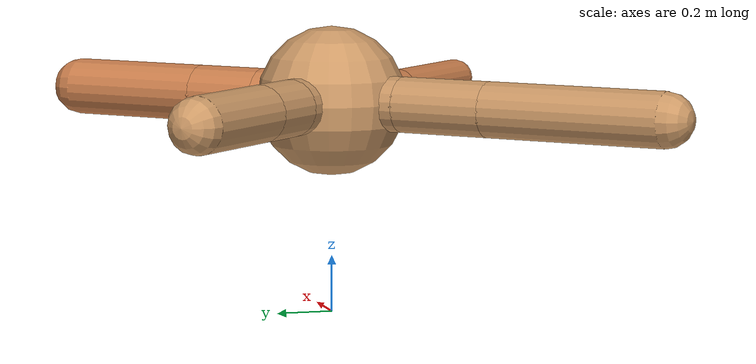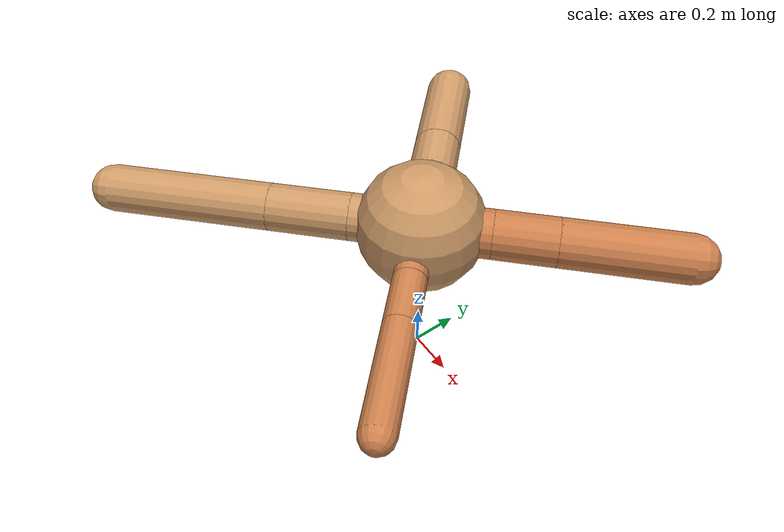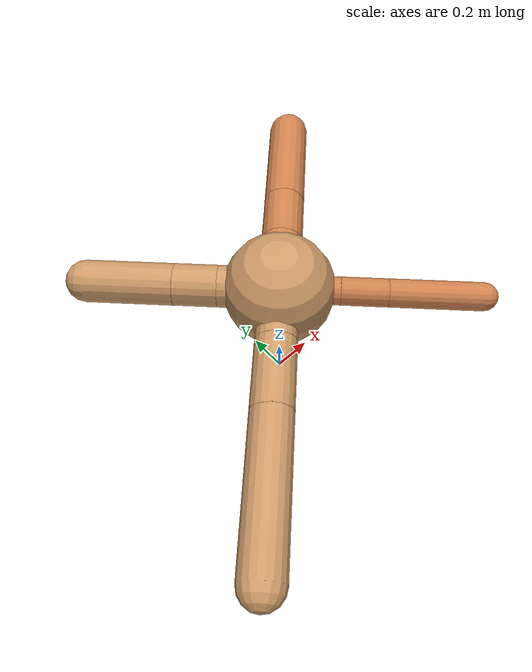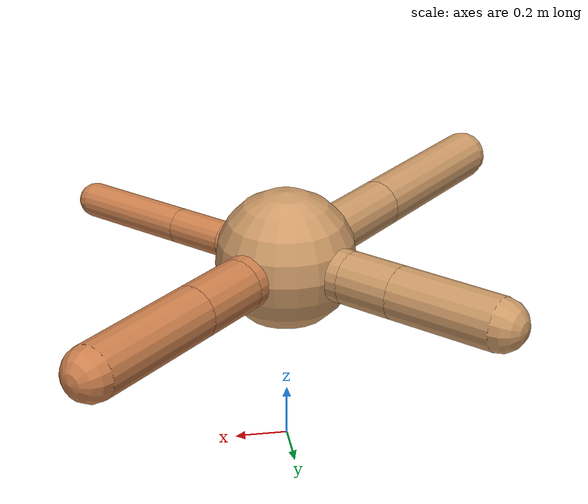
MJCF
<?xml version="1.0" ?>
<mujoco model="ant">

	<compiler angle="degree" coordinate="local" inertiafromgeom="true"/>

	<option integrator="RK4" timestep="0.01"/>

	<custom>

		<numeric data="0.0 0.0 0.55 1.0 0.0 0.0 0.0 0.0 1.0 0.0 -1.0 0.0 -1.0 0.0 1.0" name="init_qpos"/>

	</custom>

	<default>

		<joint armature="1" damping="1" limited="true"/>

		<geom conaffinity="0" condim="3" density="5.0" friction="1.5 0.1 0.1" margin="0.01" rgba="0.8 0.6 0.4 1"/>

	</default>

	<worldbody>

		<body name="torso" pos="0 0 0.75">

			<geom name="torso_geom" pos="0 0 0" size="0.26310774713903595" type="sphere"/>

			<!--joint armature="0" damping="0" limited="false" margin="0.01" name="root" pos="0 0 0" type="free"/-->

			<body name="front_left_leg" pos="0 0 0">

				<geom fromto="0 0 0 0.2 0.2 0" name="aux_1_geom" size="0.10040110195788354" type="capsule" rgba=".8 .5 .3 1"/>

				<body name="aux_1" pos="0.2 0.2 0">

					<joint axis="0 0 1" name="hip_1" pos="0.0 0.0 0.0" range="-40 40" type="hinge"/>

					<geom fromto="0 0 0 0.18047472788402152 0.18047472788402152 0" name="left_leg_geom" size="0.10040110195788354" type="capsule" rgba=".8 .5 .3 1"/>

					<body pos="0.18047472788402152 0.18047472788402152 0" name="front_left_foot">

						<joint axis="-1 1 0" name="ankle_1" pos="0.0 0.0 0.0" range="30 100" type="hinge"/>

						<geom fromto="0 0 0 0.36094945576804305 0.36094945576804305 0" name="left_ankle_geom" size="0.10040110195788354" type="capsule" rgba=".8 .5 .3 1"/>

					</body>

				</body>

			</body>

			<body name="front_right_leg" pos="0 0 0">

				<geom fromto="0 0 0 -0.2 0.2 0" name="aux_2_geom" size="0.09939177478309341" type="capsule"/>

				<body name="aux_2" pos="-0.2 0.2 0">

					<joint axis="0 0 1" name="hip_2" pos="0.0 0.0 0.0" range="-40 40" type="hinge"/>

					<geom fromto="0 0 0 -0.14456287354549083 0.14456287354549083 0" name="right_leg_geom" size="0.09939177478309341" type="capsule"/>

					<body pos="-0.14456287354549083 0.14456287354549083 0" name="front_right_foot">

						<joint axis="1 1 0" name="ankle_2" pos="0.0 0.0 0.0" range="-100 -30" type="hinge"/>

						<geom fromto="0 0 0 -0.28912574709098166 0.28912574709098166 0" name="right_ankle_geom" size="0.09939177478309341" type="capsule"/>

					</body>

				</body>

			</body>

			<body name="left_back_leg" pos="0 0 0">

				<geom fromto="0 0 0 -0.2 -0.2 0" name="aux_3_geom" size="0.09724417712735324" type="capsule"/>

				<body name="aux_3" pos="-0.2 -0.2 0">

					<joint axis="0 0 1" name="hip_3" pos="0.0 0.0 0.0" range="-40 40" type="hinge"/>

					<geom fromto="0 0 0 -0.23433056699279553 -0.23433056699279553 0" name="back_leg_geom" size="0.09724417712735324" type="capsule"/>

					<body pos="-0.23433056699279553 -0.23433056699279553 0" name="left_back_foot">

						<joint axis="-1 1 0" name="ankle_3" pos="0.0 0.0 0.0" range="-100 -30" type="hinge"/>

						<geom fromto="0 0 0 -0.46866113398559106 -0.46866113398559106 0" name="third_ankle_geom" size="0.09724417712735324" type="capsule"/>

					</body>

				</body>

			</body>

			<body name="right_back_leg" pos="0 0 0">

				<geom fromto="0 0 0 0.2 -0.2 0" name="aux_4_geom" size="0.06721977454255455" type="capsule" rgba=".8 .5 .3 1"/>

				<body name="aux_4" pos="0.2 -0.2 0">

					<joint axis="0 0 1" name="hip_4" pos="0.0 0.0 0.0" range="-40 40" type="hinge"/>

					<geom fromto="0 0 0 0.15487120004338603 -0.15487120004338603 0" name="rightback_leg_geom" size="0.06721977454255455" type="capsule" rgba=".8 .5 .3 1"/>

					<body pos="0.15487120004338603 -0.15487120004338603 0" name="right_back_foot">

						<joint axis="1 1 0" name="ankle_4" pos="0.0 0.0 0.0" range="30 100" type="hinge"/>

						<geom fromto="0 0 0 0.30974240008677206 -0.30974240008677206 0" name="fourth_ankle_geom" size="0.06721977454255455" type="capsule" rgba=".8 .5 .3 1"/>

					</body>

				</body>

			</body>

		</body>

	</worldbody>

	<actuator>

		<motor ctrllimited="true" ctrlrange="-1.0 1.0" joint="hip_4" gear="150"/>

		<motor ctrllimited="true" ctrlrange="-1.0 1.0" joint="ankle_4" gear="150"/>

		<motor ctrllimited="true" ctrlrange="-1.0 1.0" joint="hip_1" gear="150"/>

		<motor ctrllimited="true" ctrlrange="-1.0 1.0" joint="ankle_1" gear="150"/>

		<motor ctrllimited="true" ctrlrange="-1.0 1.0" joint="hip_2" gear="150"/>

		<motor ctrllimited="true" ctrlrange="-1.0 1.0" joint="ankle_2" gear="150"/>

		<motor ctrllimited="true" ctrlrange="-1.0 1.0" joint="hip_3" gear="150"/>

		<motor ctrllimited="true" ctrlrange="-1.0 1.0" joint="ankle_3" gear="150"/>

	</actuator>

</mujoco>
